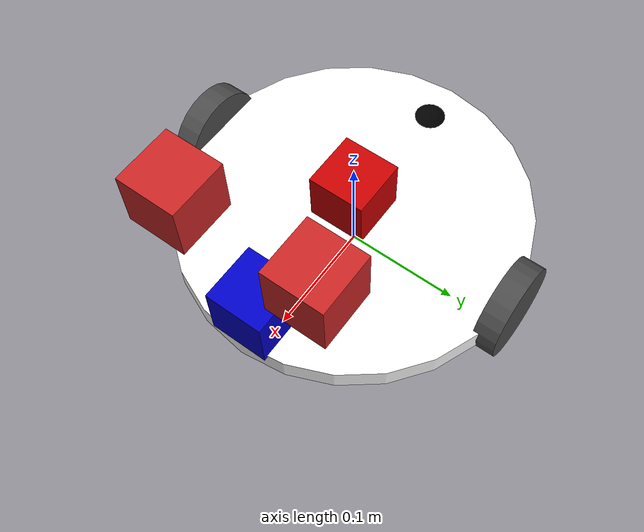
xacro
<?xml version="1.0"?>
<robot name="cam_robot" xmlns:xacro="http://ros.org/wiki/xacro">

  <xacro:include filename="$(find diff_robot)/urdf/wheel.urdf.xacro" />

  <xacro:property name="camera_link" value="0.05" /> <!-- Size of square 'camera' box -->
  <xacro:property name="camera_name" value="CAM" />
  <xacro:property name="frame_name" value="frame" />
<!-- Defining the colors used in this robot -->
  <material name="Black">
    <color rgba="0.0 0.0 0.0 1.0"/>
  </material>

  <material name="Red">
    <color rgba="0.8 0.0 0.0 1.0"/>
  </material>

  <material name="White">
    <color rgba="1.0 1.0 1.0 1.0"/>
  </material>

  <material name="Blue">
    <color rgba="0.0 0.0 0.8 1.0"/>
  </material>

  <!-- PROPERTY LIST -->
  <!--All units in m-kg-s-radians unit system -->
  <xacro:property name="M_PI" value="3.1415926535897931" />
  <xacro:property name="M_PI_2" value="1.570796327" />
  <xacro:property name="DEG_TO_RAD" value="0.017453293" />

  <!-- Main body radius and height -->
  <!-- Main Body Cylinder base   -->
  <xacro:property name="base_height" value="0.02" />
  <xacro:property name="base_radius" value="0.15" />
  <xacro:property name="base_mass" value="5" /> <!-- in kg-->

  <!-- caster wheel radius and height -->
  <!-- caster wheel mass -->
  <xacro:property name="caster_f_height" value="0.04" />
  <xacro:property name="caster_f_radius" value="0.025" />
  <xacro:property name="caster_f_mass" value="0.5" /> <!-- in kg-->

  <!-- caster wheel radius and height -->
  <!-- caster wheel mass -->
  <xacro:property name="caster_b_height" value="0.04" />
  <xacro:property name="caster_b_radius" value="0.025" />
  <xacro:property name="caster_b_mass" value="0.5" /> <!-- in kg-->

  <!-- Wheels -->

  <xacro:property name="wheel_mass" value="2.5" /> --> <!-- in kg-->

  <xacro:property name="base_x_origin_to_wheel_origin" value="0.25" />
  <xacro:property name="base_y_origin_to_wheel_origin" value="0.3" />
  <xacro:property name="base_z_origin_to_wheel_origin" value="0.0" />

  <!-- Hokuyo Laser scanner -->
  <xacro:property name="hokuyo_size" value="0.05" />

  <!-- Macro for calculating inertia of cylinder -->
  <xacro:macro name="cylinder_inertia" params="m r h">
    <inertia  ixx="${m*(3*r*r+h*h)/12}" ixy = "0" ixz = "0"
              iyy="${m*(3*r*r+h*h)/12}" iyz = "0"
              izz="${m*r*r/2}" />
  </xacro:macro>

  <!-- BASE-FOOTPRINT -->
  <!-- base_footprint is a fictitious link(frame) that is on the ground right below base_link origin -->
  <link name="dummy0">
   </link>
  <link name="base_footprint">
    <inertial>
      <mass value="0.0001" />
      <origin xyz="0 0 0" />
      <inertia ixx="0.0001" ixy="0.0" ixz="0.0"
          iyy="0.0001" iyz="0.0"
          izz="0.0001" />
    </inertial>
    <visual>
        <origin xyz="0 0 0" rpy="0 0 0" />
        <geometry>
            <box size="0.001 0.001 0.001" />
        </geometry>
    </visual>
  </link>
  <joint name="dummy_joint0" type="fixed">
     <parent link="dummy0"/>
     <child link="base_footprint"/>
  </joint>
  <gazebo reference="base_footprint">
    <turnGravityOff>false</turnGravityOff>
  </gazebo>
  <link name="dummy">
   </link>
  <joint name="base_footprint_joint" type="fixed">
    <origin xyz="0 0 ${wheel_radius - base_z_origin_to_wheel_origin}" rpy="0 0 0" />
    <parent link="base_footprint"/>
    <child link="dummy" />
  </joint>

  <!-- BASE-LINK -->
  <!--Actual body/chassis of the robot-->
  <link name="base_link">
    <inertial>
      <mass value="${base_mass}" />
      <origin xyz="0 0 0" />
      <!--The 3x3 rotational inertia matrix. -->
      <xacro:cylinder_inertia  m="${base_mass}" r="${base_radius}" h="${base_height}" />

    </inertial>
    <visual>
      <origin xyz="0 0 0" rpy="0 0 0" />
      <geometry>

          <cylinder length="${base_height}" radius="${base_radius}" />

      </geometry>
      <material name="White" />
    </visual>
    <collision>
      <origin xyz="0 0 0" rpy="0 0 0 " />
      <geometry>

          <cylinder length="${base_height}" radius="${base_radius}" />

      </geometry>
    </collision>
  </link>
  <joint name="dummy_joint" type="fixed">
     <parent link="dummy"/>
     <child link="base_link"/>
  </joint>
  <gazebo reference="base_link">
    <material>Gazebo/White</material>
    <turnGravityOff>false</turnGravityOff>
  </gazebo>

<!--Caster front  -->

    <link name="caster_front_link">

    <visual>
      <origin xyz="0 0.02 0" rpy="${M_PI/2} 0 0" />
      <geometry>
	<sphere radius="${caster_f_radius}" />
      </geometry>
      <material name="Black" />
    </visual>

      <collision>
        <geometry>

	<sphere radius="${caster_f_radius}" />

        </geometry>
      <origin xyz="0 0.02 0" rpy="${M_PI/2} 0 0" />
      </collision>
      <inertial>
        <mass value="${caster_f_mass}" />
        <origin xyz="0 0 0" />
        <inertia ixx="0.001" ixy="0.0" ixz="0.0"
                 iyy="0.001" iyz="0.0"
                 izz="0.001" />
      </inertial>
    </link>

 <joint name="caster_front_joint" type="fixed">
      <parent link="base_link"/>
      <child link="caster_front_link"/>
      <origin xyz="0.115 0.0 0.007" rpy="${-M_PI/2} 0 0"/>
    </joint>

  <gazebo reference="caster_front_link">
    <turnGravityOff>false</turnGravityOff>
  </gazebo>

<!--Caster back  -->

    <link name="caster_back_link">

    <visual>
      <origin xyz="0.02 0.02 0 " rpy="${M_PI/2} 0 0" />

      <geometry>

	<sphere radius="${caster_b_radius}" />

      </geometry>
      <material name="Black" />
    </visual>

      <collision>
        <geometry>
		<sphere radius="${caster_b_radius}" />
        </geometry>
      <origin xyz="0 0.02 0 " rpy="${M_PI/2} 0 0" />
      </collision>
      <inertial>
        <mass value="${caster_b_mass}" />
        <origin xyz="0 0 0" />
        <inertia ixx="0.001" ixy="0.0" ixz="0.0"
                 iyy="0.001" iyz="0.0"
                 izz="0.001" />
      </inertial>
    </link>

    <joint name="caster_back_joint" type="fixed">
      <parent link="base_link"/>
      <child link="caster_back_link"/>
      <origin xyz="-0.135 0.0 0.009" rpy="${-M_PI/2} 0 0"/>
    </joint>

  <gazebo reference="caster_back_link">
    <turnGravityOff>false</turnGravityOff>
  </gazebo>

  <xacro:wheels fb="front" lr="left" parent="base_link" translateX="0" translateY="0.5" flipY="1"/>
  <xacro:wheels fb="front" lr="right" parent="base_link" translateX="0" translateY="-0.5" flipY="1"/>

  <!-- SENSORS -->

  <!-- hokuyo -->

  <link name="hokuyo_link">
    <visual>
      <origin xyz="0 0 0" rpy="0 0 0" />
      <geometry>
        <box size="${hokuyo_size} ${hokuyo_size} ${hokuyo_size}"/>
      </geometry>
      <material name="Blue" />
    </visual>
  </link>
  <joint name="hokuyo_joint" type="fixed">
    <origin xyz="${base_radius - hokuyo_size/2} 0 ${base_height+hokuyo_size/4}" rpy="0 0 0" />
    <parent link="base_link"/>
    <child link="hokuyo_link" />
  </joint>
  <gazebo reference="hokuyo_link">
    <material>Gazebo/Blue</material>
    <turnGravityOff>false</turnGravityOff>
    <sensor type="ray" name="head_hokuyo_sensor">
      <pose>${hokuyo_size/2} 0 0 0 0 0</pose>
      <visualize>true</visualize>
      <update_rate>40</update_rate>
      <ray>
        <scan>
          <horizontal>
            <samples>720</samples>
            <resolution>1</resolution>
            <min_angle>-1.570796</min_angle>
            <max_angle>1.570796</max_angle>
          </horizontal>
        </scan>
        <range>
          <min>0.10</min>
          <max>10.0</max>
          <resolution>0.001</resolution>
        </range>
      </ray>
      <plugin name="gazebo_ros_head_hokuyo_controller" filename="libgazebo_ros_laser.so">
        <topicName>/scan</topicName>
        <frameName>hokuyo_link</frameName>
      </plugin>
    </sensor>
  </gazebo>

<link name="imu_link">
    <visual>
      <origin xyz="0 0 0" rpy="0 0 0" />
      <geometry>
        <box size="${hokuyo_size} ${hokuyo_size} ${hokuyo_size}"/>
      </geometry>
      <material name="Red" />
    </visual>
  </link>
<joint name="imu_joint" type="fixed">
    <origin xyz="0 0 ${base_height+hokuyo_size/4}" rpy="0 0 0" />
    <parent link="base_link"/>
    <child link="imu_link"/>
  </joint>

  <gazebo reference="imu_link">
    <gravity>true</gravity>
    <sensor name="imu_sensor" type="imu">
      <always_on>true</always_on>
      <update_rate>100</update_rate>
      <visualize>true</visualize>
      <topic>imu/data_raw</topic>
      <plugin filename="libgazebo_ros_imu_sensor.so" name="imu_plugin">
        <topicName>imu/data_raw</topicName>
        <bodyName>imu_link</bodyName>
        <updateRateHZ>10.0</updateRateHZ>
        <gaussianNoise>0.0</gaussianNoise>
        <xyzOffset>0 0 0</xyzOffset>
        <rpyOffset>0 0 0</rpyOffset>
        <frameName>imu_link</frameName>
        <initialOrientationAsReference>false</initialOrientationAsReference>
      </plugin>
      <pose>0 0 0 0 0 0</pose>
    </sensor>
  </gazebo>

<joint name="camera1_joint" type="fixed">
    <origin xyz="${base_radius - hokuyo_size/2} 0.06 ${base_height+hokuyo_size/4+0.1}" rpy="0 0 0" />
    <parent link="base_link"/>
    <child link="camera1_link"/>
  </joint>

  <!-- Camera -->
  <link name="camera1_link">
    <collision>
      <origin xyz="0 0 0" rpy="0 0 0"/>
      <geometry>
    <box size="${camera_link} ${camera_link} ${camera_link}"/>
      </geometry>
    </collision>

    <visual>
      <origin xyz="0 0 0" rpy="0 0 0"/>
      <geometry>
    <box size="${camera_link} ${camera_link} ${camera_link}"/>
      </geometry>
      <material name="red"/>
    </visual>

    <inertial>
      <mass value="1e-5" />
      <origin xyz="${base_radius - hokuyo_size/2} 0.06 ${base_height+hokuyo_size/4+0.1}" rpy="0 0 0"/>
      <inertia ixx="1e-6" ixy="0" ixz="0" iyy="1e-6" iyz="0" izz="1e-6" />
    </inertial>
  </link>
   <!-- camera -->
  <gazebo reference="camera1_link">
      <sensor type="depth" name="camera1">
        <always_on>true</always_on>
        <update_rate>20.0</update_rate>
        <camera>
          <horizontal_fov>${60.0*M_PI/180.0}</horizontal_fov>
          <image>
            <format>B8G8R8</format>
            <width>640</width>
            <height>480</height>
          </image>
          <clip>
            <near>0.05</near>
            <far>8.0</far>
          </clip>
        </camera>
        <plugin name="kinect_camera_controller" filename="libgazebo_ros_openni_kinect.so">
          <cameraName>camera</cameraName>
          <alwaysOn>true</alwaysOn>
          <updateRate>10</updateRate>
          <imageTopicName>rgb/image_raw1</imageTopicName>
          <depthImageTopicName>depth/image_raw1</depthImageTopicName>
          <pointCloudTopicName>depth/points1</pointCloudTopicName>
          <cameraInfoTopicName>rgb/camera_info1</cameraInfoTopicName>
          <depthImageCameraInfoTopicName>depth/camera_info1</depthImageCameraInfoTopicName>
          <frameName>camera_link_optical</frameName>
          <baseline>0.1</baseline>
          <distortion_k1>0.0</distortion_k1>
          <distortion_k2>0.0</distortion_k2>
          <distortion_k3>0.0</distortion_k3>
          <distortion_t1>0.0</distortion_t1>
          <distortion_t2>0.0</distortion_t2>
          <pointCloudCutoff>0.4</pointCloudCutoff>
        </plugin>
      </sensor>
    </gazebo>

  <joint name="camera2_joint" type="fixed">
    <origin xyz="${base_radius - hokuyo_size/2} -0.06 ${base_height+hokuyo_size/4+0.1}" rpy="0 0 0" />
    <parent link="base_link"/>
    <child link="camera2_link"/>
  </joint>

  <!-- Camera -->
  <link name="camera2_link">
    <collision>
      <origin xyz="0 0 0" rpy="0 0 0"/>
      <geometry>
    <box size="${camera_link} ${camera_link} ${camera_link}"/>
      </geometry>
    </collision>

    <visual>
      <origin xyz="0 0 0" rpy="0 0 0"/>
      <geometry>
    <box size="${camera_link} ${camera_link} ${camera_link}"/>
      </geometry>
      <material name="red"/>
    </visual>

    <inertial>
      <mass value="1e-5" />
      <origin xyz="${base_radius - hokuyo_size/2} -0.06 ${base_height+hokuyo_size/4+0.1}" rpy="0 0 0"/>
      <inertia ixx="1e-6" ixy="0" ixz="0" iyy="1e-6" iyz="0" izz="1e-6" />
    </inertial>
  </link>
   <!-- camera -->
  <gazebo reference="camera2_link">
      <sensor type="depth" name="camera2">
        <always_on>true</always_on>
        <update_rate>20.0</update_rate>
        <camera>
          <horizontal_fov>${60.0*M_PI/180.0}</horizontal_fov>
          <image>
            <format>B8G8R8</format>
            <width>640</width>
            <height>480</height>
          </image>
          <clip>
            <near>0.05</near>
            <far>8.0</far>
          </clip>
        </camera>
        <plugin name="kinect_camera_controller" filename="libgazebo_ros_openni_kinect.so">
          <cameraName>camera</cameraName>
          <alwaysOn>true</alwaysOn>
          <updateRate>10</updateRate>
          <imageTopicName>rgb/image_raw2</imageTopicName>
          <depthImageTopicName>depth/image_raw2</depthImageTopicName>
          <pointCloudTopicName>depth/points2</pointCloudTopicName>
          <cameraInfoTopicName>rgb/camera_info2</cameraInfoTopicName>
          <depthImageCameraInfoTopicName>depth/camera_info2</depthImageCameraInfoTopicName>
          <frameName>camera_link_optical</frameName>
          <baseline>0.1</baseline>
          <distortion_k1>0.0</distortion_k1>
          <distortion_k2>0.0</distortion_k2>
          <distortion_k3>0.0</distortion_k3>
          <distortion_t1>0.0</distortion_t1>
          <distortion_t2>0.0</distortion_t2>
          <pointCloudCutoff>0.4</pointCloudCutoff>
        </plugin>
      </sensor>
    </gazebo>

  <!-- Differential drive controller  -->
  <gazebo>
    <plugin name="differential_drive_controller" filename="libgazebo_ros_diff_drive.so">
      <legacyMode>true</legacyMode>
      <rosDebugLevel>Debug</rosDebugLevel>
      <publishWheelTF>false</publishWheelTF>
      <robotNamespace>/</robotNamespace>
      <publishTf>1</publishTf>
      <publishWheelJointState>false</publishWheelJointState>
      <alwaysOn>true</alwaysOn>
      <updateRate>100.0</updateRate>
      <leftJoint>front_left_wheel_joint</leftJoint>
      <rightJoint>front_right_wheel_joint</rightJoint>
      <wheelSeparation>${2*base_radius}</wheelSeparation>
      <wheelDiameter>${2*wheel_radius}</wheelDiameter>
      <broadcastTF>1</broadcastTF>
      <wheelTorque>30</wheelTorque>
      <wheelAcceleration>1.8</wheelAcceleration>
      <commandTopic>cmd_vel</commandTopic>
      <odometryFrame>odom</odometryFrame>
      <odometryTopic>odom</odometryTopic>
      <robotBaseFrame>base_footprint</robotBaseFrame>
    </plugin>
  </gazebo>

</robot>

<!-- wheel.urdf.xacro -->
<robot name="wheel" xmlns:xacro="http://www.ros.org/wiki/xacro">

  <!-- Wheels -->
  <xacro:property name="wheel_radius" value="0.04" />
  <xacro:property name="wheel_height" value="0.02" />
  <xacro:property name="wheel_mass" value="2.5" /> <!-- in kg-->

  <xacro:property name="base_x_origin_to_wheel_origin" value="0.25" />
  <xacro:property name="base_y_origin_to_wheel_origin" value="0.3" />
  <xacro:property name="base_z_origin_to_wheel_origin" value="0.0" />

  <xacro:macro name="cylinder_inertia" params="m r h">
    <inertia  ixx="${m*(3*r*r+h*h)/12}" ixy = "0" ixz = "0"
              iyy="${m*(3*r*r+h*h)/12}" iyz = "0"
              izz="${m*r*r/2}" />
  </xacro:macro>

  <xacro:macro name="wheels" params="fb lr parent translateX translateY flipY"> <!--fb : front, back ; lr: left, right -->
    <link name="${fb}_${lr}_wheel">
      <visual>
        <origin xyz="0 0 0" rpy="${flipY*M_PI/2} 0  0 " />
        <geometry>
          <cylinder length="${wheel_height}" radius="${wheel_radius}" />
        </geometry>
        <material name="DarkGray" />
      </visual>
      <collision>
        <origin xyz="0 0 0" rpy="${flipY*M_PI/2} 0 0 " />
        <geometry>
          <cylinder length="${wheel_height}" radius="${wheel_radius}" />
        </geometry>
      </collision>
      <inertial>
        <mass value="${wheel_mass}" />
        <origin xyz="0 0 0" />
        <xacro:cylinder_inertia  m="${wheel_mass}" r="${wheel_radius}" h="${wheel_height}" />
      </inertial>
    </link>

    <gazebo reference="${fb}_${lr}_wheel">
      <mu1 value="1.0"/>
      <mu2 value="1.0"/>
      <kp  value="10000000.0" />
      <kd  value="1.0" />
      <fdir1 value="1 0 0"/>
      <material>Gazebo/Grey</material>
      <turnGravityOff>false</turnGravityOff>
    </gazebo>

    <joint name="${fb}_${lr}_wheel_joint" type="continuous">
      <parent link="${parent}"/>
      <child link="${fb}_${lr}_wheel"/>
      <origin xyz="${translateX * base_x_origin_to_wheel_origin} ${translateY * base_y_origin_to_wheel_origin} ${base_z_origin_to_wheel_origin}" rpy="0 0 0" />
      <axis xyz="0 1 0" rpy="0  0" />
      <limit effort="100" velocity="100"/>
      <joint_properties damping="0.0" friction="0.0"/>
    </joint>

    <!-- Transmission is important to link the joints and the controller -->
    <transmission name="${fb}_${lr}_wheel_joint_trans">
      <type>transmission_interface/SimpleTransmission</type>
      <joint name="${fb}_${lr}_wheel_joint" />
      <actuator name="${fb}_${lr}_wheel_joint_motor">
        <hardwareInterface>EffortJointInterface</hardwareInterface>
        <mechanicalReduction>1</mechanicalReduction>
      </actuator>
    </transmission>

  </xacro:macro>
</robot>
